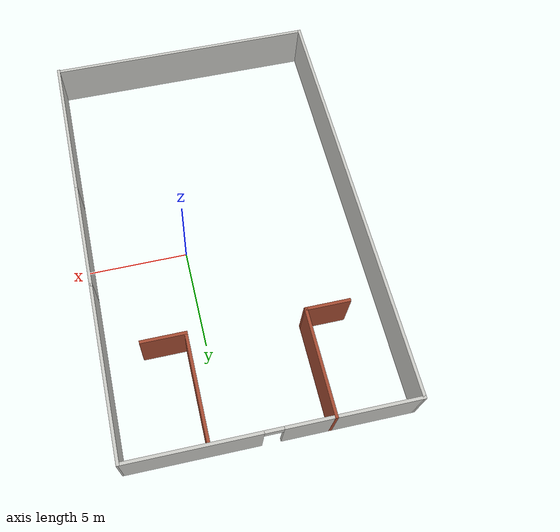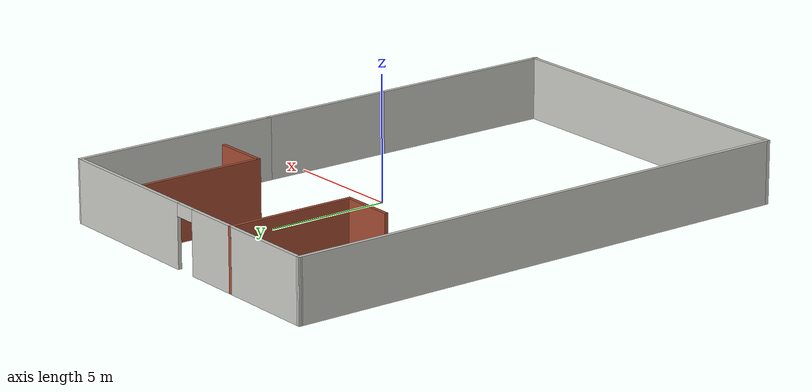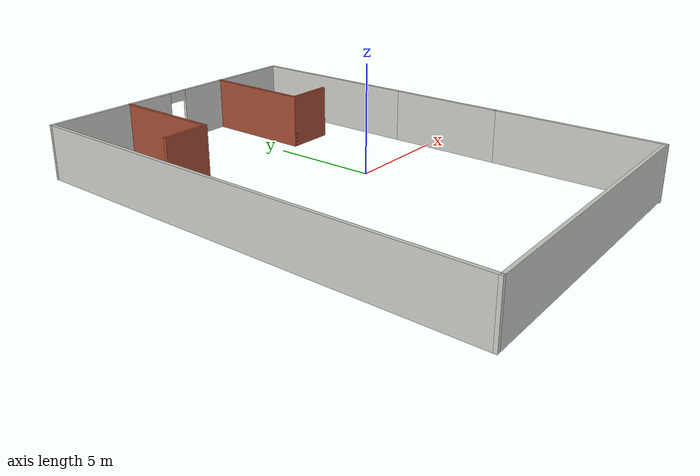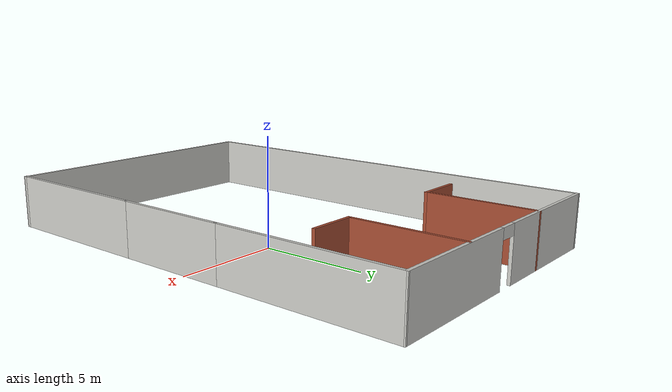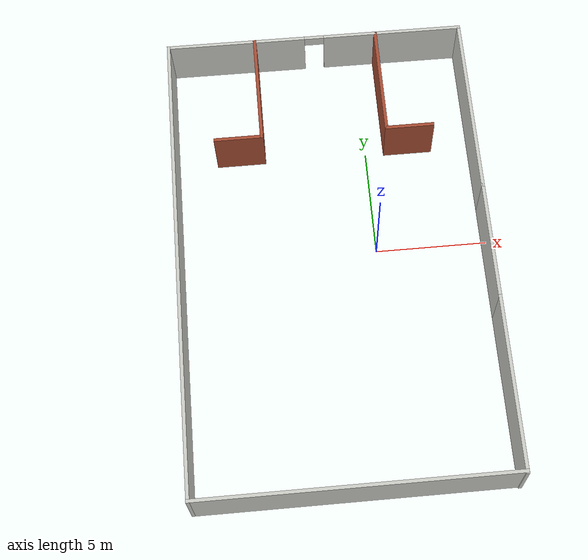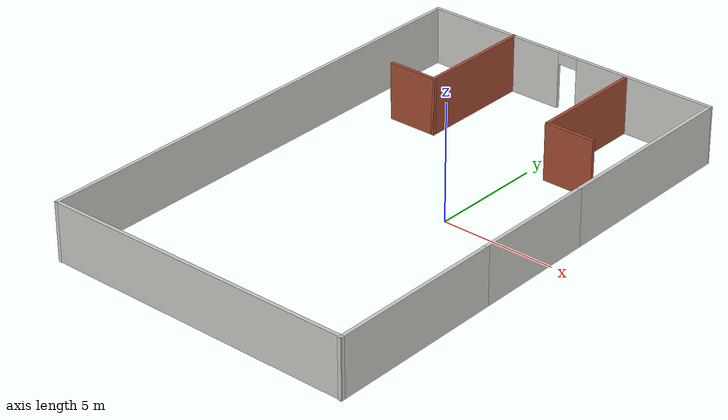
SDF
<?xml version='1.0'?>
<sdf version='1.7'>
  <model name='human_tracking'>
    <pose>-1.97183 -0.551708 0 0 -0 0</pose>
    <link name='Wall_11'>
      <collision name='Wall_11_Collision'>
        <geometry>
          <box>
            <size>5.25 0.15 2.5</size>
          </box>
        </geometry>
        <pose>0 0 1.25 0 -0 0</pose>
      </collision>
      <visual name='Wall_11_Visual'>
        <pose>0 0 1.25 0 -0 0</pose>
        <geometry>
          <box>
            <size>5.25 0.15 2.5</size>
          </box>
        </geometry>
        <material>
          <script>
            <uri>file://media/materials/scripts/gazebo.material</uri>
            <name>Gazebo/Bricks</name>
          </script>
          <ambient>1 1 1 1</ambient>
        </material>
        <meta>
          <layer>0</layer>
        </meta>
      </visual>
      <pose>2.87855 8.11561 0 0 -0 -1.5708</pose>
    </link>
    <link name='Wall_12'>
      <collision name='Wall_12_Collision'>
        <geometry>
          <box>
            <size>2.25 0.15 2.5</size>
          </box>
        </geometry>
        <pose>0 0 1.25 0 -0 0</pose>
      </collision>
      <visual name='Wall_12_Visual'>
        <pose>0 0 1.25 0 -0 0</pose>
        <geometry>
          <box>
            <size>2.25 0.15 2.5</size>
          </box>
        </geometry>
        <material>
          <script>
            <uri>file://media/materials/scripts/gazebo.material</uri>
            <name>Gazebo/Bricks</name>
          </script>
          <ambient>1 1 1 1</ambient>
        </material>
        <meta>
          <layer>0</layer>
        </meta>
      </visual>
      <pose>3.92855 5.56561 0 0 -0 0</pose>
    </link>
    <link name='Wall_14'>
      <collision name='Wall_14_Collision'>
        <geometry>
          <box>
            <size>5.25 0.15 2.5</size>
          </box>
        </geometry>
        <pose>0 0 1.25 0 -0 0</pose>
      </collision>
      <visual name='Wall_14_Visual'>
        <pose>0 0 1.25 0 -0 0</pose>
        <geometry>
          <box>
            <size>5.25 0.15 2.5</size>
          </box>
        </geometry>
        <material>
          <script>
            <uri>file://media/materials/scripts/gazebo.material</uri>
            <name>Gazebo/Bricks</name>
          </script>
          <ambient>1 1 1 1</ambient>
        </material>
        <meta>
          <layer>0</layer>
        </meta>
      </visual>
      <pose>-2.79736 8.16213 0 0 -0 -1.5708</pose>
    </link>
    <link name='Wall_15'>
      <collision name='Wall_15_Collision'>
        <geometry>
          <box>
            <size>2.25 0.15 2.5</size>
          </box>
        </geometry>
        <pose>0 0 1.25 0 -0 0</pose>
      </collision>
      <visual name='Wall_15_Visual'>
        <pose>0 0 1.25 0 -0 0</pose>
        <geometry>
          <box>
            <size>2.25 0.15 2.5</size>
          </box>
        </geometry>
        <material>
          <script>
            <uri>file://media/materials/scripts/gazebo.material</uri>
            <name>Gazebo/Bricks</name>
          </script>
          <ambient>1 1 1 1</ambient>
        </material>
        <meta>
          <layer>0</layer>
        </meta>
      </visual>
      <pose>-3.84736 5.61213 0 0 -0 3.14159</pose>
    </link>
    <link name='Wall_4'>
      <collision name='Wall_4_Collision'>
        <geometry>
          <box>
            <size>5.5 0.15 2.5</size>
          </box>
        </geometry>
        <pose>0 0 1.25 0 -0 0</pose>
      </collision>
      <visual name='Wall_4_Visual'>
        <pose>0 0 1.25 0 -0 0</pose>
        <geometry>
          <box>
            <size>5.5 0.15 2.5</size>
          </box>
        </geometry>
        <material>
          <script>
            <uri>file://media/materials/scripts/gazebo.material</uri>
            <name>Gazebo/CeilingTiled</name>
          </script>
          <ambient>1 1 1 1</ambient>
        </material>
        <meta>
          <layer>0</layer>
        </meta>
      </visual>
      <pose>6.82581 -0.397054 0 0 -0 -1.5708</pose>
    </link>
    <link name='Wall_5'>
      <collision name='Wall_5_Collision'>
        <geometry>
          <box>
            <size>7.80267 0.15 2.5</size>
          </box>
        </geometry>
        <pose>0 0 1.25 0 -0 0</pose>
      </collision>
      <visual name='Wall_5_Visual'>
        <pose>0 0 1.25 0 -0 0</pose>
        <geometry>
          <box>
            <size>7.80267 0.15 2.5</size>
          </box>
        </geometry>
        <material>
          <script>
            <uri>file://media/materials/scripts/gazebo.material</uri>
            <name>Gazebo/CeilingTiled</name>
          </script>
          <ambient>1 1 1 1</ambient>
        </material>
        <meta>
          <layer>0</layer>
        </meta>
      </visual>
      <pose>6.82581 -6.89839 0 0 -0 -1.5708</pose>
    </link>
    <link name='Wall_6'>
      <collision name='Wall_6_Collision'>
        <geometry>
          <box>
            <size>13.8016 0.15 2.5</size>
          </box>
        </geometry>
        <pose>0 0 1.25 0 -0 0</pose>
      </collision>
      <visual name='Wall_6_Visual'>
        <pose>0 0 1.25 0 -0 0</pose>
        <geometry>
          <box>
            <size>13.8016 0.15 2.5</size>
          </box>
        </geometry>
        <material>
          <script>
            <uri>file://media/materials/scripts/gazebo.material</uri>
            <name>Gazebo/CeilingTiled</name>
          </script>
          <ambient>1 1 1 1</ambient>
        </material>
        <meta>
          <layer>0</layer>
        </meta>
      </visual>
      <pose>0 -10.6782 0 0 -0 3.14159</pose>
    </link>
    <link name='Wall_7'>
      <collision name='Wall_7_Collision'>
        <geometry>
          <box>
            <size>21.5527 0.15 2.5</size>
          </box>
        </geometry>
        <pose>0 0 1.25 0 -0 0</pose>
      </collision>
      <visual name='Wall_7_Visual'>
        <pose>0 0 1.25 0 -0 0</pose>
        <geometry>
          <box>
            <size>21.5527 0.15 2.5</size>
          </box>
        </geometry>
        <material>
          <script>
            <uri>file://media/materials/scripts/gazebo.material</uri>
            <name>Gazebo/CeilingTiled</name>
          </script>
          <ambient>1 1 1 1</ambient>
        </material>
        <meta>
          <layer>0</layer>
        </meta>
      </visual>
      <pose>-6.82581 0.023135 0 0 -0 1.5708</pose>
    </link>
    <link name='Wall_8'>
      <pose>0 10.7012 0 0 -0 -0.003408</pose>
      <visual name='Wall_8_Visual_0'>
        <pose>-3.67825 0 1.25 0 -0 0</pose>
        <geometry>
          <box>
            <size>6.4452 0.15 2.5</size>
          </box>
        </geometry>
        <material>
          <script>
            <uri>file://media/materials/scripts/gazebo.material</uri>
            <name>Gazebo/CeilingTiled</name>
          </script>
          <ambient>1 1 1 1</ambient>
        </material>
        <meta>
          <layer>0</layer>
        </meta>
      </visual>
      <collision name='Wall_8_Collision_0'>
        <geometry>
          <box>
            <size>6.4452 0.15 2.5</size>
          </box>
        </geometry>
        <pose>-3.67825 0 1.25 0 -0 0</pose>
      </collision>
      <visual name='Wall_8_Visual_1'>
        <pose>3.6726 0 1.25 0 -0 0</pose>
        <geometry>
          <box>
            <size>6.45649 0.15 2.5</size>
          </box>
        </geometry>
        <material>
          <script>
            <uri>file://media/materials/scripts/gazebo.material</uri>
            <name>Gazebo/CeilingTiled</name>
          </script>
          <ambient>1 1 1 1</ambient>
        </material>
        <meta>
          <layer>0</layer>
        </meta>
      </visual>
      <collision name='Wall_8_Collision_1'>
        <geometry>
          <box>
            <size>6.45649 0.15 2.5</size>
          </box>
        </geometry>
        <pose>3.6726 0 1.25 0 -0 0</pose>
      </collision>
      <visual name='Wall_8_Visual_2'>
        <pose>-0.005648 0 2.25 0 -0 0</pose>
        <geometry>
          <box>
            <size>0.9 0.15 0.5</size>
          </box>
        </geometry>
        <material>
          <script>
            <uri>file://media/materials/scripts/gazebo.material</uri>
            <name>Gazebo/CeilingTiled</name>
          </script>
          <ambient>1 1 1 1</ambient>
        </material>
        <meta>
          <layer>0</layer>
        </meta>
      </visual>
      <collision name='Wall_8_Collision_2'>
        <geometry>
          <box>
            <size>0.9 0.15 0.5</size>
          </box>
        </geometry>
        <pose>-0.005648 0 2.25 0 -0 0</pose>
      </collision>
    </link>
    <link name='Wall_9'>
      <collision name='Wall_9_Collision'>
        <geometry>
          <box>
            <size>8.55 0.15 2.5</size>
          </box>
        </geometry>
        <pose>0 0 1.25 0 -0 0</pose>
      </collision>
      <visual name='Wall_9_Visual'>
        <pose>0 0 1.25 0 -0 0</pose>
        <geometry>
          <box>
            <size>8.55 0.15 2.5</size>
          </box>
        </geometry>
        <material>
          <script>
            <uri>file://media/materials/scripts/gazebo.material</uri>
            <name>Gazebo/CeilingTiled</name>
          </script>
          <ambient>1 1 1 1</ambient>
        </material>
        <meta>
          <layer>0</layer>
        </meta>
      </visual>
      <pose>6.82581 6.47795 0 0 -0 -1.5708</pose>
    </link>
    <static>1</static>
  </model>
</sdf>
